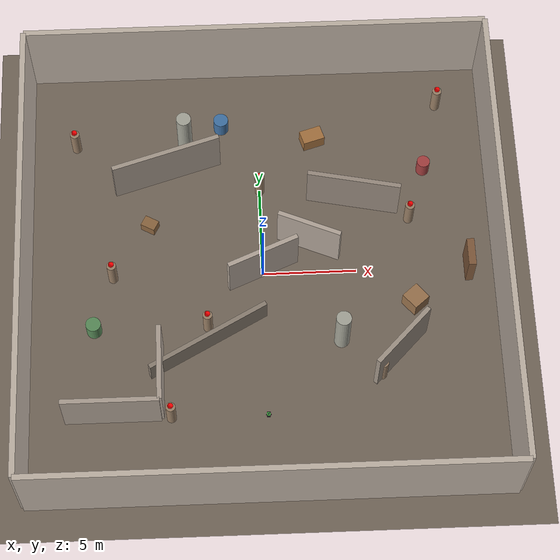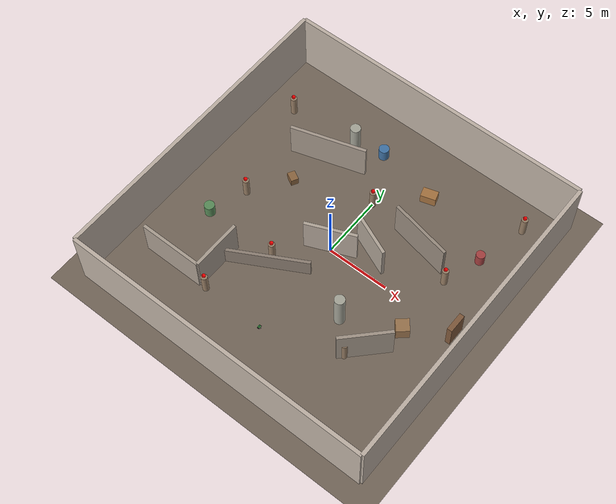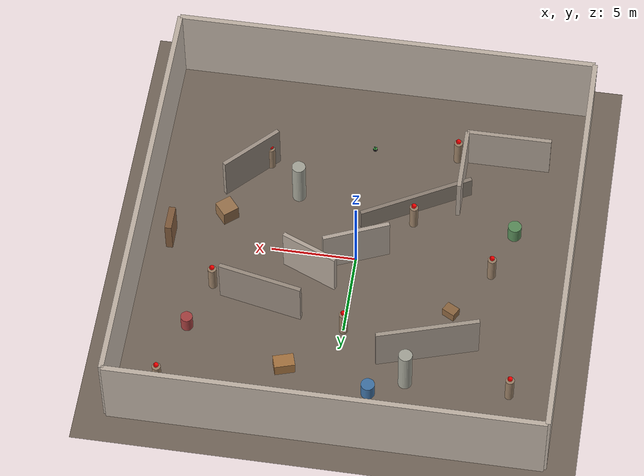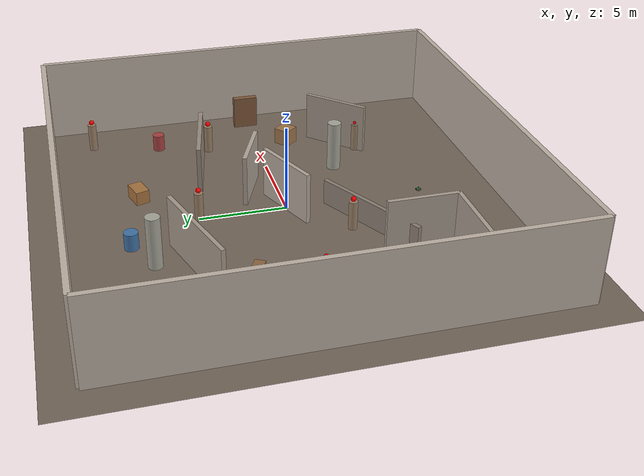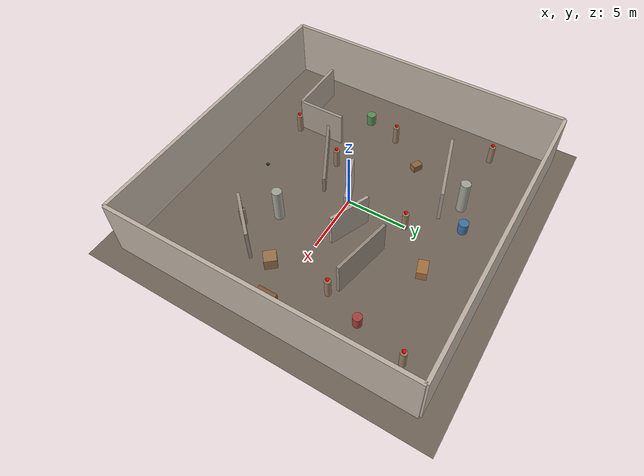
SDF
<sdf version="1.6">
 <world name="large_messy_room">
  <model name="floor">
   <static>true</static>
   <link name="link">
    <collision name="collision">
     <geometry><plane><normal>0 0 1</normal><size>30 30</size></plane></geometry>
    </collision>
    <visual name="visual">
     <geometry><plane><normal>0 0 1</normal><size>30 30</size></plane></geometry>
     <material>
      <ambient>0.4 0.35 0.3 1</ambient>
      <diffuse>0.45 0.4 0.35 1</diffuse>
      <specular>0.1 0.1 0.1 1</specular>
     </material>
    </visual>
   </link>
  </model>
  <model name="wall_north">
   <static>true</static>
   <link name="link">
    <pose>0 12.5 2.5 0 0 0</pose>
    <collision name="collision"><geometry><box><size>25 0.3 5</size></box></geometry></collision>
    <visual name="visual">
     <geometry><box><size>25 0.3 5</size></box></geometry>
     <material><ambient>0.7 0.65 0.6 1</ambient><diffuse>0.75 0.7 0.65 1</diffuse></material>
    </visual>
   </link>
  </model>
  <model name="wall_south">
   <static>true</static>
   <link name="link">
    <pose>0 -12.5 2.5 0 0 0</pose>
    <collision name="collision"><geometry><box><size>25 0.3 5</size></box></geometry></collision>
    <visual name="visual">
     <geometry><box><size>25 0.3 5</size></box></geometry>
     <material><ambient>0.7 0.65 0.6 1</ambient><diffuse>0.75 0.7 0.65 1</diffuse></material>
    </visual>
   </link>
  </model>
  <model name="wall_east">
   <static>true</static>
   <link name="link">
    <pose>12.5 0 2.5 0 0 0</pose>
    <collision name="collision"><geometry><box><size>0.3 25 5</size></box></geometry></collision>
    <visual name="visual">
     <geometry><box><size>0.3 25 5</size></box></geometry>
     <material><ambient>0.7 0.65 0.6 1</ambient><diffuse>0.75 0.7 0.65 1</diffuse></material>
    </visual>
   </link>
  </model>
  <model name="wall_west">
   <static>true</static>
   <link name="link">
    <pose>-12.5 0 2.5 0 0 0</pose>
    <collision name="collision"><geometry><box><size>0.3 25 5</size></box></geometry></collision>
    <visual name="visual">
     <geometry><box><size>0.3 25 5</size></box></geometry>
     <material><ambient>0.7 0.65 0.6 1</ambient><diffuse>0.75 0.7 0.65 1</diffuse></material>
    </visual>
   </link>
  </model>
  <model name="messy_wall_1">
   <static>true</static>
   <link name="link">
    <pose>-5 6 1.5 0 0 0.3</pose>
    <collision name="collision"><geometry><box><size>6 0.25 3</size></box></geometry></collision>
    <visual name="visual">
     <geometry><box><size>6 0.25 3</size></box></geometry>
     <material><ambient>0.6 0.55 0.5 1</ambient><diffuse>0.65 0.6 0.55 1</diffuse></material>
    </visual>
   </link>
  </model>
  <model name="messy_wall_2">
   <static>true</static>
   <link name="link">
    <pose>5 4 1.5 0 0 -0.2</pose>
    <collision name="collision"><geometry><box><size>5 0.25 3</size></box></geometry></collision>
    <visual name="visual">
     <geometry><box><size>5 0.25 3</size></box></geometry>
     <material><ambient>0.55 0.5 0.45 1</ambient><diffuse>0.6 0.55 0.5 1</diffuse></material>
    </visual>
   </link>
  </model>
  <model name="messy_wall_3">
   <static>true</static>
   <link name="link">
    <pose>-3 -4 0.75 0 0 0.5</pose>
    <collision name="collision"><geometry><box><size>7 0.25 1.5</size></box></geometry></collision>
    <visual name="visual">
     <geometry><box><size>7 0.25 1.5</size></box></geometry>
     <material><ambient>0.5 0.45 0.4 1</ambient><diffuse>0.55 0.5 0.45 1</diffuse></material>
    </visual>
   </link>
  </model>
  <model name="messy_wall_4">
   <static>true</static>
   <link name="link">
    <pose>7 -5 1.5 0 0 0.8</pose>
    <collision name="collision"><geometry><box><size>4 0.25 3</size></box></geometry></collision>
    <visual name="visual">
     <geometry><box><size>4 0.25 3</size></box></geometry>
     <material><ambient>0.58 0.53 0.48 1</ambient><diffuse>0.63 0.58 0.53 1</diffuse></material>
    </visual>
   </link>
  </model>
  <model name="messy_wall_5a">
   <static>true</static>
   <link name="link">
    <pose>-8 -8 1.5 0 0 0</pose>
    <collision name="collision"><geometry><box><size>5 0.25 3</size></box></geometry></collision>
    <visual name="visual">
     <geometry><box><size>5 0.25 3</size></box></geometry>
     <material><ambient>0.62 0.57 0.52 1</ambient><diffuse>0.67 0.62 0.57 1</diffuse></material>
    </visual>
   </link>
  </model>
  <model name="messy_wall_5b">
   <static>true</static>
   <link name="link">
    <pose>-5.5 -6 1.5 0 0 1.57</pose>
    <collision name="collision"><geometry><box><size>4 0.25 3</size></box></geometry></collision>
    <visual name="visual">
     <geometry><box><size>4 0.25 3</size></box></geometry>
     <material><ambient>0.62 0.57 0.52 1</ambient><diffuse>0.67 0.62 0.57 1</diffuse></material>
    </visual>
   </link>
  </model>
  <model name="messy_wall_6a">
   <static>true</static>
   <link name="link">
    <pose>0 0 1.5 0 0 0.4</pose>
    <collision name="collision"><geometry><box><size>4 0.25 3</size></box></geometry></collision>
    <visual name="visual">
     <geometry><box><size>4 0.25 3</size></box></geometry>
     <material><ambient>0.65 0.6 0.55 1</ambient><diffuse>0.7 0.65 0.6 1</diffuse></material>
    </visual>
   </link>
  </model>
  <model name="messy_wall_6b">
   <static>true</static>
   <link name="link">
    <pose>2.5 1.5 1.5 0 0 -0.4</pose>
    <collision name="collision"><geometry><box><size>3.5 0.25 3</size></box></geometry></collision>
    <visual name="visual">
     <geometry><box><size>3.5 0.25 3</size></box></geometry>
     <material><ambient>0.65 0.6 0.55 1</ambient><diffuse>0.7 0.65 0.6 1</diffuse></material>
    </visual>
   </link>
  </model>
  <model name="box_obstacle_1">
   <static>true</static>
   <link name="link">
    <pose>3 8 0.4 0 0 0.3</pose>
    <collision name="collision"><geometry><box><size>1.2 0.8 0.8</size></box></geometry></collision>
    <visual name="visual">
     <geometry><box><size>1.2 0.8 0.8</size></box></geometry>
     <material><ambient>0.6 0.4 0.2 1</ambient><diffuse>0.65 0.45 0.25 1</diffuse></material>
    </visual>
   </link>
  </model>
  <model name="box_obstacle_2">
   <static>true</static>
   <link name="link">
    <pose>-6 3 0.3 0 0 -0.5</pose>
    <collision name="collision"><geometry><box><size>0.8 0.6 0.6</size></box></geometry></collision>
    <visual name="visual">
     <geometry><box><size>0.8 0.6 0.6</size></box></geometry>
     <material><ambient>0.5 0.35 0.2 1</ambient><diffuse>0.55 0.4 0.25 1</diffuse></material>
    </visual>
   </link>
  </model>
  <model name="box_obstacle_3">
   <static>true</static>
   <link name="link">
    <pose>8 -2 0.5 0 0 0.7</pose>
    <collision name="collision"><geometry><box><size>1.0 1.0 1.0</size></box></geometry></collision>
    <visual name="visual">
     <geometry><box><size>1.0 1.0 1.0</size></box></geometry>
     <material><ambient>0.55 0.4 0.25 1</ambient><diffuse>0.6 0.45 0.3 1</diffuse></material>
    </visual>
   </link>
  </model>
  <model name="barrel_1">
   <static>true</static>
   <link name="link">
    <pose>-2 9 0.5 0 0 0</pose>
    <collision name="collision">
     <geometry><cylinder><radius>0.4</radius><length>1.0</length></cylinder></geometry>
    </collision>
    <visual name="visual">
     <geometry><cylinder><radius>0.4</radius><length>1.0</length></cylinder></geometry>
     <material><ambient>0.2 0.4 0.6 1</ambient><diffuse>0.25 0.45 0.65 1</diffuse></material>
    </visual>
   </link>
  </model>
  <model name="barrel_2">
   <static>true</static>
   <link name="link">
    <pose>9 6 0.5 0 0 0</pose>
    <collision name="collision">
     <geometry><cylinder><radius>0.35</radius><length>1.0</length></cylinder></geometry>
    </collision>
    <visual name="visual">
     <geometry><cylinder><radius>0.35</radius><length>1.0</length></cylinder></geometry>
     <material><ambient>0.6 0.2 0.2 1</ambient><diffuse>0.65 0.25 0.25 1</diffuse></material>
    </visual>
   </link>
  </model>
  <model name="barrel_3">
   <static>true</static>
   <link name="link">
    <pose>-9 -3 0.5 0 0 0</pose>
    <collision name="collision">
     <geometry><cylinder><radius>0.4</radius><length>1.0</length></cylinder></geometry>
    </collision>
    <visual name="visual">
     <geometry><cylinder><radius>0.4</radius><length>1.0</length></cylinder></geometry>
     <material><ambient>0.3 0.5 0.3 1</ambient><diffuse>0.35 0.55 0.35 1</diffuse></material>
    </visual>
   </link>
  </model>
  <model name="human_static_1">
   <static>true</static>
   <pose>-10 8 0.85 0 0 0.5</pose>
   <link name="link">
    <collision name="collision">
     <geometry><cylinder><radius>0.25</radius><length>1.7</length></cylinder></geometry>
    </collision>
    <visual name="body">
     <geometry><cylinder><radius>0.25</radius><length>1.7</length></cylinder></geometry>
     <material><ambient>0.55 0.45 0.35 1</ambient><diffuse>0.6 0.5 0.4 1</diffuse></material>
    </visual>
    <visual name="head">
     <pose>0 0 1.0 0 0 0</pose>
     <geometry><sphere><radius>0.15</radius></sphere></geometry>
     <material><ambient>1.0 0.0 0.0 1</ambient><diffuse>1.0 0.0 0.0 1</diffuse></material>
    </visual>
   </link>
  </model>
  <model name="human_static_2">
   <static>true</static>
   <pose>10 10 0.85 0 0 -0.8</pose>
   <link name="link">
    <collision name="collision">
     <geometry><cylinder><radius>0.25</radius><length>1.7</length></cylinder></geometry>
    </collision>
    <visual name="body">
     <geometry><cylinder><radius>0.25</radius><length>1.7</length></cylinder></geometry>
     <material><ambient>0.55 0.45 0.35 1</ambient><diffuse>0.6 0.5 0.4 1</diffuse></material>
    </visual>
    <visual name="head">
     <pose>0 0 1.0 0 0 0</pose>
     <geometry><sphere><radius>0.15</radius></sphere></geometry>
     <material><ambient>1.0 0.0 0.0 1</ambient><diffuse>1.0 0.0 0.0 1</diffuse></material>
    </visual>
   </link>
  </model>
  <model name="human_static_3">
   <static>true</static>
   <pose>-5 -8 0.85 0 0 1.2</pose>
   <link name="link">
    <collision name="collision">
     <geometry><cylinder><radius>0.25</radius><length>1.7</length></cylinder></geometry>
    </collision>
    <visual name="body">
     <geometry><cylinder><radius>0.25</radius><length>1.7</length></cylinder></geometry>
     <material><ambient>0.55 0.45 0.35 1</ambient><diffuse>0.6 0.5 0.4 1</diffuse></material>
    </visual>
    <visual name="head">
     <pose>0 0 1.0 0 0 0</pose>
     <geometry><sphere><radius>0.15</radius></sphere></geometry>
     <material><ambient>1.0 0.0 0.0 1</ambient><diffuse>1.0 0.0 0.0 1</diffuse></material>
    </visual>
   </link>
  </model>
  <model name="human_moving_1">
   <static>false</static>
   <pose>-8 0 0.85 0 0 0</pose>
   <link name="link">
    <inertial><mass>70.0</mass><inertia><ixx>2</ixx><iyy>2</iyy><izz>0.5</izz></inertia></inertial>
    <collision name="collision">
     <geometry><cylinder><radius>0.25</radius><length>1.7</length></cylinder></geometry>
    </collision>
    <visual name="body">
     <geometry><cylinder><radius>0.25</radius><length>1.7</length></cylinder></geometry>
     <material><ambient>0.55 0.45 0.35 1</ambient><diffuse>0.6 0.5 0.4 1</diffuse></material>
    </visual>
    <visual name="head">
     <pose>0 0 1.0 0 0 0</pose>
     <geometry><sphere><radius>0.15</radius></sphere></geometry>
     <material><ambient>1.0 0.0 0.0 1</ambient><diffuse>1.0 0.0 0.0 1</diffuse></material>
    </visual>
   </link>
  </model>
  <model name="human_moving_2">
   <static>false</static>
   <pose>6 -6 0.85 0 0 1.57</pose>
   <link name="link">
    <inertial><mass>65.0</mass><inertia><ixx>2</ixx><iyy>2</iyy><izz>0.5</izz></inertia></inertial>
    <collision name="collision">
     <geometry><cylinder><radius>0.25</radius><length>1.7</length></cylinder></geometry>
    </collision>
    <visual name="body">
     <geometry><cylinder><radius>0.25</radius><length>1.7</length></cylinder></geometry>
     <material><ambient>0.55 0.45 0.35 1</ambient><diffuse>0.6 0.5 0.4 1</diffuse></material>
    </visual>
    <visual name="head">
     <pose>0 0 1.0 0 0 0</pose>
     <geometry><sphere><radius>0.15</radius></sphere></geometry>
     <material><ambient>1.0 0.0 0.0 1</ambient><diffuse>1.0 0.0 0.0 1</diffuse></material>
    </visual>
   </link>
  </model>
  <model name="human_moving_3">
   <static>false</static>
   <pose>0 5 0.85 0 0 0</pose>
   <link name="link">
    <inertial><mass>75.0</mass><inertia><ixx>2</ixx><iyy>2</iyy><izz>0.5</izz></inertia></inertial>
    <collision name="collision">
     <geometry><cylinder><radius>0.25</radius><length>1.7</length></cylinder></geometry>
    </collision>
    <visual name="body">
     <geometry><cylinder><radius>0.25</radius><length>1.7</length></cylinder></geometry>
     <material><ambient>0.55 0.45 0.35 1</ambient><diffuse>0.6 0.5 0.4 1</diffuse></material>
    </visual>
    <visual name="head">
     <pose>0 0 1.0 0 0 0</pose>
     <geometry><sphere><radius>0.15</radius></sphere></geometry>
     <material><ambient>1.0 0.0 0.0 1</ambient><diffuse>1.0 0.0 0.0 1</diffuse></material>
    </visual>
   </link>
  </model>
  <model name="human_moving_4">
   <static>false</static>
   <pose>-3 -3 0.85 0 0 0.78</pose>
   <link name="link">
    <inertial><mass>68.0</mass><inertia><ixx>2</ixx><iyy>2</iyy><izz>0.5</izz></inertia></inertial>
    <collision name="collision">
     <geometry><cylinder><radius>0.25</radius><length>1.7</length></cylinder></geometry>
    </collision>
    <visual name="body">
     <geometry><cylinder><radius>0.25</radius><length>1.7</length></cylinder></geometry>
     <material><ambient>0.55 0.45 0.35 1</ambient><diffuse>0.6 0.5 0.4 1</diffuse></material>
    </visual>
    <visual name="head">
     <pose>0 0 1.0 0 0 0</pose>
     <geometry><sphere><radius>0.15</radius></sphere></geometry>
     <material><ambient>1.0 0.0 0.0 1</ambient><diffuse>1.0 0.0 0.0 1</diffuse></material>
    </visual>
   </link>
  </model>
  <model name="human_moving_5">
   <static>false</static>
   <pose>8 3 0.85 0 0 -1.0</pose>
   <link name="link">
    <inertial><mass>72.0</mass><inertia><ixx>2</ixx><iyy>2</iyy><izz>0.5</izz></inertia></inertial>
    <collision name="collision">
     <geometry><cylinder><radius>0.25</radius><length>1.7</length></cylinder></geometry>
    </collision>
    <visual name="body">
     <geometry><cylinder><radius>0.25</radius><length>1.7</length></cylinder></geometry>
     <material><ambient>0.55 0.45 0.35 1</ambient><diffuse>0.6 0.5 0.4 1</diffuse></material>
    </visual>
    <visual name="head">
     <pose>0 0 1.0 0 0 0</pose>
     <geometry><sphere><radius>0.15</radius></sphere></geometry>
     <material><ambient>1.0 0.0 0.0 1</ambient><diffuse>1.0 0.0 0.0 1</diffuse></material>
    </visual>
   </link>
  </model>
  <model name="turtlebot3_rover">
   <static>false</static>
   <pose>0 -8 0.0 0 0 1.5708</pose>
   <link name="base_footprint"><pose>0 0 0.01 0 0 0</pose></link>
   <link name="base_link">
    <pose>0 0 0.08 0 0 0</pose>
    <inertial><mass>1.5</mass><inertia><ixx>0.01</ixx><iyy>0.01</iyy><izz>0.01</izz></inertia></inertial>
    <collision name="base_collision"><geometry><box><size>0.28 0.18 0.08</size></box></geometry></collision>
    <visual name="base_visual">
     <geometry><box><size>0.28 0.18 0.08</size></box></geometry>
     <material><ambient>0.1 0.1 0.1 1</ambient><diffuse>0.15 0.15 0.15 1</diffuse></material>
    </visual>
   </link>
   <link name="top_plate">
    <pose>0 0 0.14 0 0 0</pose>
    <inertial><mass>0.3</mass><inertia><ixx>0.002</ixx><iyy>0.002</iyy><izz>0.002</izz></inertia></inertial>
    <collision name="top_plate_collision">
     <geometry><cylinder><radius>0.10</radius><length>0.02</length></cylinder></geometry>
    </collision>
    <visual name="top_plate_visual">
     <geometry><cylinder><radius>0.10</radius><length>0.02</length></cylinder></geometry>
     <material><ambient>0.2 0.7 0.2 1</ambient><diffuse>0.25 0.75 0.25 1</diffuse></material>
    </visual>
   </link>
   <link name="wheel_left">
    <pose>0 0.12 0.04 -1.5708 0 0</pose>
    <inertial><mass>0.15</mass><inertia><ixx>0.0001</ixx><iyy>0.0001</iyy><izz>0.0001</izz></inertia></inertial>
    <collision name="wheel_left_collision">
     <geometry><cylinder><radius>0.04</radius><length>0.025</length></cylinder></geometry>
     <surface><friction><ode><mu>1.0</mu><mu2>1.0</mu2></ode></friction></surface>
    </collision>
    <visual name="wheel_left_visual">
     <geometry><cylinder><radius>0.04</radius><length>0.025</length></cylinder></geometry>
     <material><ambient>0.1 0.1 0.1 1</ambient><diffuse>0.15 0.15 0.15 1</diffuse></material>
    </visual>
   </link>
   <link name="wheel_right">
    <pose>0 -0.12 0.04 -1.5708 0 0</pose>
    <inertial><mass>0.15</mass><inertia><ixx>0.0001</ixx><iyy>0.0001</iyy><izz>0.0001</izz></inertia></inertial>
    <collision name="wheel_right_collision">
     <geometry><cylinder><radius>0.04</radius><length>0.025</length></cylinder></geometry>
     <surface><friction><ode><mu>1.0</mu><mu2>1.0</mu2></ode></friction></surface>
    </collision>
    <visual name="wheel_right_visual">
     <geometry><cylinder><radius>0.04</radius><length>0.025</length></cylinder></geometry>
     <material><ambient>0.1 0.1 0.1 1</ambient><diffuse>0.15 0.15 0.15 1</diffuse></material>
    </visual>
   </link>
   <link name="caster_front">
    <pose>0.1 0 0.015 0 0 0</pose>
    <inertial>
     <mass>0.05</mass>
     <inertia><ixx>0.00001</ixx><iyy>0.00001</iyy><izz>0.00001</izz></inertia>
    </inertial>
    <collision name="caster_front_collision">
     <geometry><sphere><radius>0.015</radius></sphere></geometry>
     <surface><friction><ode><mu>0.0</mu><mu2>0.0</mu2></ode></friction></surface>
    </collision>
    <visual name="caster_front_visual">
     <geometry><sphere><radius>0.015</radius></sphere></geometry>
     <material><ambient>0.3 0.3 0.3 1</ambient><diffuse>0.35 0.35 0.35 1</diffuse></material>
    </visual>
   </link>
   <link name="caster_back">
    <pose>-0.1 0 0.015 0 0 0</pose>
    <inertial>
     <mass>0.05</mass>
     <inertia><ixx>0.00001</ixx><iyy>0.00001</iyy><izz>0.00001</izz></inertia>
    </inertial>
    <collision name="caster_back_collision">
     <geometry><sphere><radius>0.015</radius></sphere></geometry>
     <surface><friction><ode><mu>0.0</mu><mu2>0.0</mu2></ode></friction></surface>
    </collision>
    <visual name="caster_back_visual">
     <geometry><sphere><radius>0.015</radius></sphere></geometry>
     <material><ambient>0.3 0.3 0.3 1</ambient><diffuse>0.35 0.35 0.35 1</diffuse></material>
    </visual>
   </link>
   <link name="lidar_link">
    <pose>0 0 0.18 0 0 0</pose>
    <inertial><mass>0.2</mass><inertia><ixx>0.001</ixx><iyy>0.001</iyy><izz>0.001</izz></inertia></inertial>
    <collision name="lidar_collision">
     <geometry><cylinder><radius>0.04</radius><length>0.04</length></cylinder></geometry>
    </collision>
    <visual name="lidar_visual">
     <geometry><cylinder><radius>0.04</radius><length>0.04</length></cylinder></geometry>
     <material><ambient>0.2 0.2 0.2 1</ambient><diffuse>0.25 0.25 0.25 1</diffuse></material>
    </visual>
    <sensor name="lidar" type="gpu_lidar">
     <always_on>true</always_on>
     <visualize>true</visualize>
     <update_rate>10</update_rate>
     <topic>scan</topic>
     <gz_frame_id>lidar_link</gz_frame_id>
     <lidar>
      <scan>
       <horizontal>
        <samples>360</samples>
        <resolution>1</resolution>
        <min_angle>-3.14159</min_angle>
        <max_angle>3.14159</max_angle>
       </horizontal>
      </scan>
      <range><min>0.12</min><max>12.0</max><resolution>0.01</resolution></range>
      <noise><type>gaussian</type><mean>0.0</mean><stddev>0.01</stddev></noise>
     </lidar>
    </sensor>
   </link>
   <link name="camera_link">
    <pose>0 0 0.22 0 0 0</pose>
    <inertial><mass>0.1</mass><inertia><ixx>0.0001</ixx><iyy>0.0001</iyy><izz>0.0001</izz></inertia></inertial>
    <collision name="camera_collision"><geometry><sphere><radius>0.02</radius></sphere></geometry></collision>
    <visual name="camera_visual">
     <geometry><sphere><radius>0.02</radius></sphere></geometry>
     <material><ambient>0.1 0.1 0.8 1</ambient><diffuse>0.15 0.15 0.85 1</diffuse></material>
    </visual>
    <sensor name="camera_front" type="camera">
     <always_on>true</always_on>
     <update_rate>15</update_rate>
     <topic>camera/front/image</topic>
     <camera>
      <horizontal_fov>1.57</horizontal_fov>
      <image><width>640</width><height>480</height><format>R8G8B8</format></image>
      <clip><near>0.1</near><far>15.0</far></clip>
     </camera>
    </sensor>
    <sensor name="camera_right" type="camera">
     <pose>0 0 0 0 0 -1.5708</pose>
     <always_on>true</always_on>
     <update_rate>15</update_rate>
     <topic>camera/right/image</topic>
     <camera>
      <horizontal_fov>1.57</horizontal_fov>
      <image><width>640</width><height>480</height><format>R8G8B8</format></image>
      <clip><near>0.1</near><far>15.0</far></clip>
     </camera>
    </sensor>
    <sensor name="camera_back" type="camera">
     <pose>0 0 0 0 0 3.14159</pose>
     <always_on>true</always_on>
     <update_rate>15</update_rate>
     <topic>camera/back/image</topic>
     <camera>
      <horizontal_fov>1.57</horizontal_fov>
      <image><width>640</width><height>480</height><format>R8G8B8</format></image>
      <clip><near>0.1</near><far>15.0</far></clip>
     </camera>
    </sensor>
    <sensor name="camera_left" type="camera">
     <pose>0 0 0 0 0 1.5708</pose>
     <always_on>true</always_on>
     <update_rate>15</update_rate>
     <topic>camera/left/image</topic>
     <camera>
      <horizontal_fov>1.57</horizontal_fov>
      <image><width>640</width><height>480</height><format>R8G8B8</format></image>
      <clip><near>0.1</near><far>15.0</far></clip>
     </camera>
    </sensor>
   </link>
   <joint name="base_joint" type="fixed"><parent>base_footprint</parent><child>base_link</child></joint>
   <joint name="top_plate_joint" type="fixed"><parent>base_link</parent><child>top_plate</child></joint>
   <joint name="wheel_left_joint" type="revolute">
    <parent>base_link</parent>
    <child>wheel_left</child>
    <axis><xyz>0 0 1</xyz><limit><lower>-1e16</lower><upper>1e16</upper></limit></axis>
   </joint>
   <joint name="wheel_right_joint" type="revolute">
    <parent>base_link</parent>
    <child>wheel_right</child>
    <axis><xyz>0 0 1</xyz><limit><lower>-1e16</lower><upper>1e16</upper></limit></axis>
   </joint>
   <joint name="caster_front_joint" type="ball"><parent>base_link</parent><child>caster_front</child></joint>
   <joint name="caster_back_joint" type="ball"><parent>base_link</parent><child>caster_back</child></joint>
   <joint name="lidar_joint" type="fixed"><parent>top_plate</parent><child>lidar_link</child></joint>
   <joint name="camera_joint" type="fixed"><parent>lidar_link</parent><child>camera_link</child></joint>
   <plugin filename="gz-sim-diff-drive-system" name="gz::sim::systems::DiffDrive">
    <left_joint>wheel_left_joint</left_joint>
    <right_joint>wheel_right_joint</right_joint>
    <wheel_separation>0.24</wheel_separation>
    <wheel_radius>0.04</wheel_radius>
    <max_linear_acceleration>1.0</max_linear_acceleration>
    <topic>cmd_vel</topic>
    <odom_topic>odom</odom_topic>
    <frame_id>odom</frame_id>
    <child_frame_id>base_footprint</child_frame_id>
    <odom_publish_frequency>30</odom_publish_frequency>
   </plugin>
  </model>
  <model name="bookshelf">
   <static>true</static>
   <pose>11 0 0 0 0 0</pose>
   <link name="frame">
    <pose>0 0 1.0 0 0 0</pose>
    <collision name="collision"><geometry><box><size>0.4 1.5 2.0</size></box></geometry></collision>
    <visual name="visual">
     <geometry><box><size>0.4 1.5 2.0</size></box></geometry>
     <material><ambient>0.45 0.3 0.18 1</ambient><diffuse>0.5 0.35 0.23 1</diffuse></material>
    </visual>
   </link>
  </model>
  <model name="pillar_1">
   <static>true</static>
   <link name="link">
    <pose>-4 8 1.5 0 0 0</pose>
    <collision name="collision">
     <geometry><cylinder><radius>0.4</radius><length>3</length></cylinder></geometry>
    </collision>
    <visual name="visual">
     <geometry><cylinder><radius>0.4</radius><length>3</length></cylinder></geometry>
     <material><ambient>0.6 0.6 0.55 1</ambient><diffuse>0.65 0.65 0.6 1</diffuse></material>
    </visual>
   </link>
  </model>
  <model name="pillar_2">
   <static>true</static>
   <link name="link">
    <pose>4 -4 1.5 0 0 0</pose>
    <collision name="collision">
     <geometry><cylinder><radius>0.4</radius><length>3</length></cylinder></geometry>
    </collision>
    <visual name="visual">
     <geometry><cylinder><radius>0.4</radius><length>3</length></cylinder></geometry>
     <material><ambient>0.6 0.6 0.55 1</ambient><diffuse>0.65 0.65 0.6 1</diffuse></material>
    </visual>
   </link>
  </model>
 </world>
</sdf>
